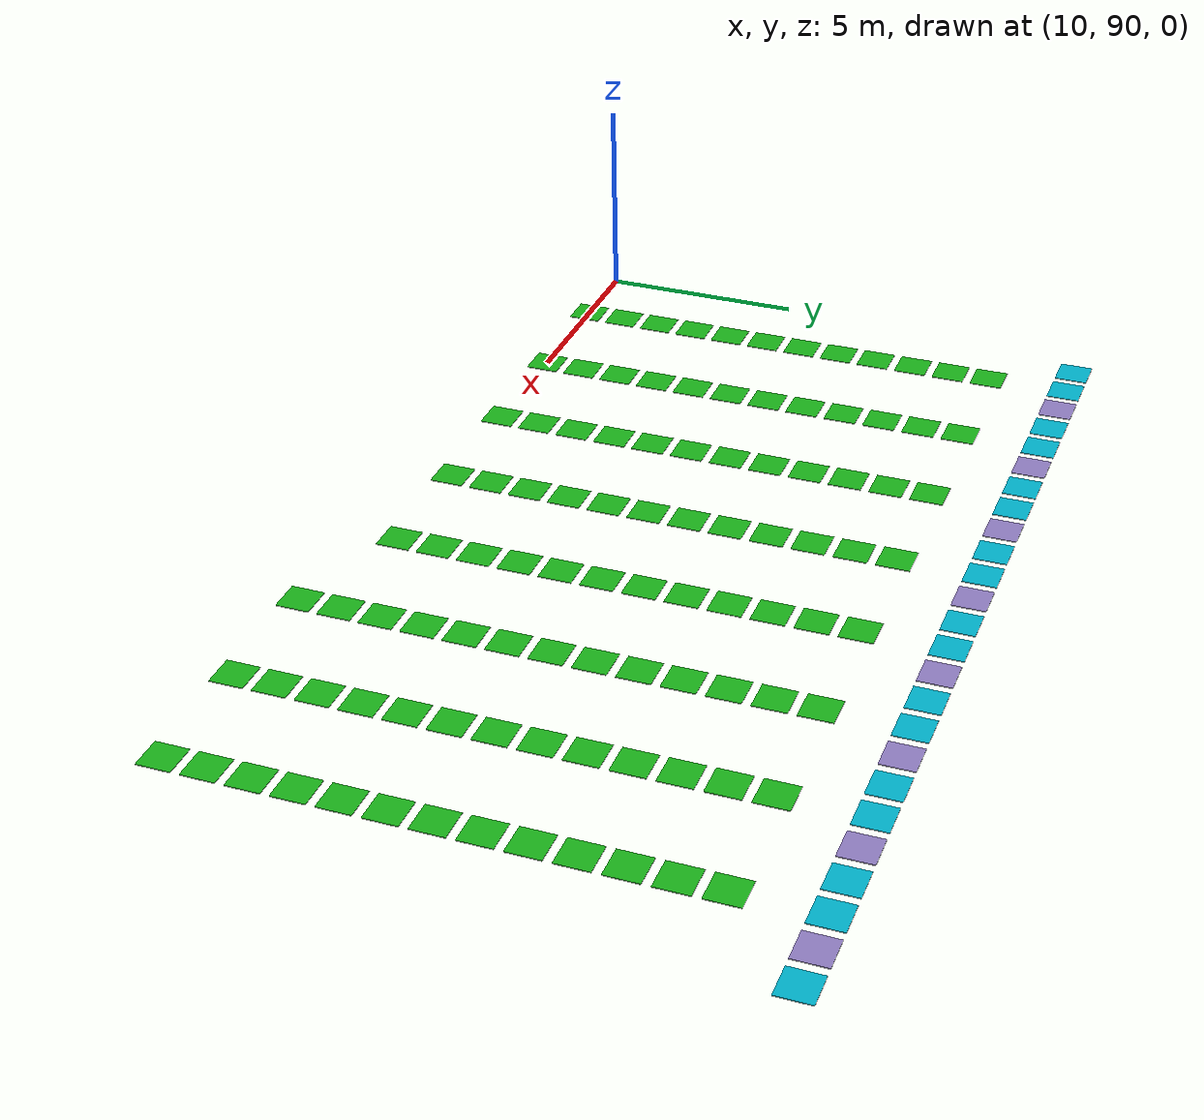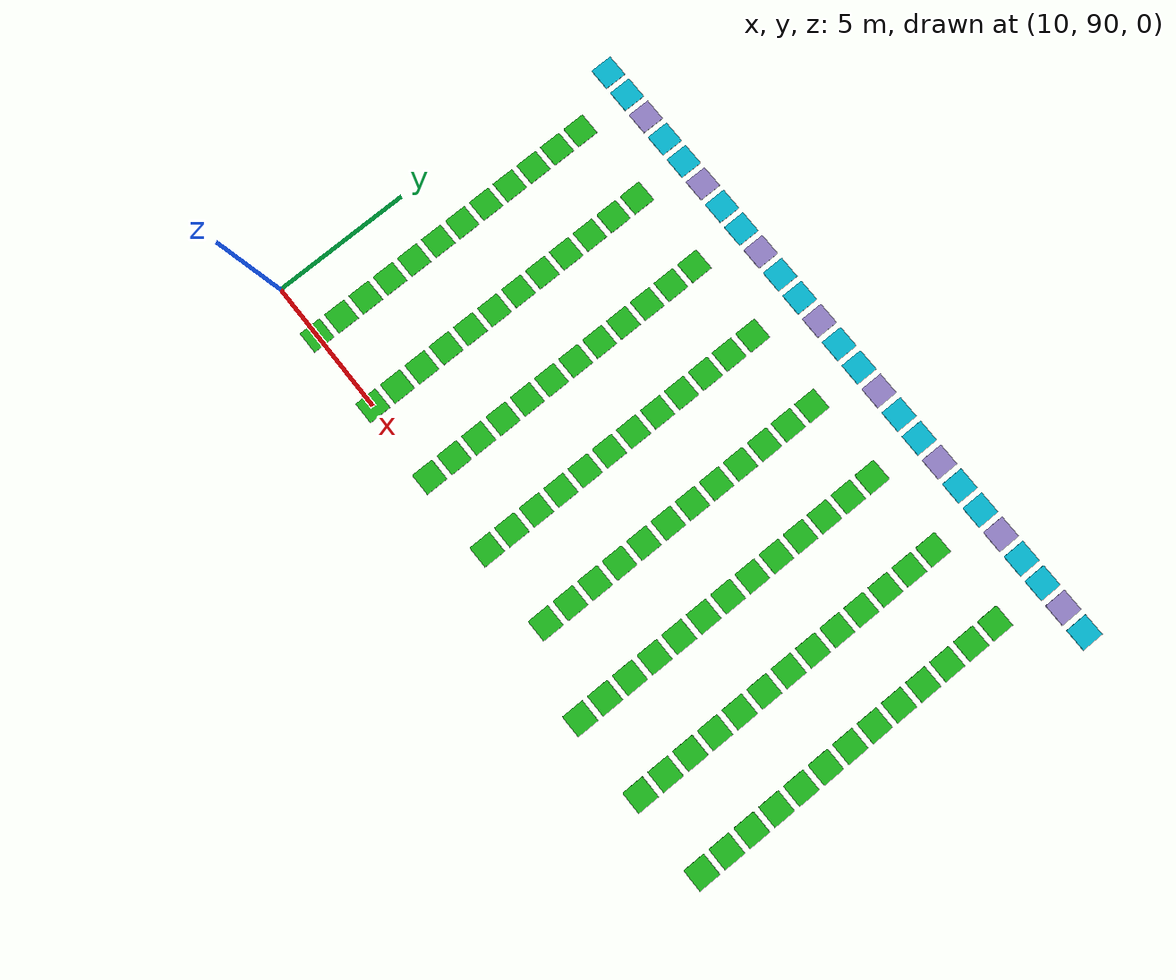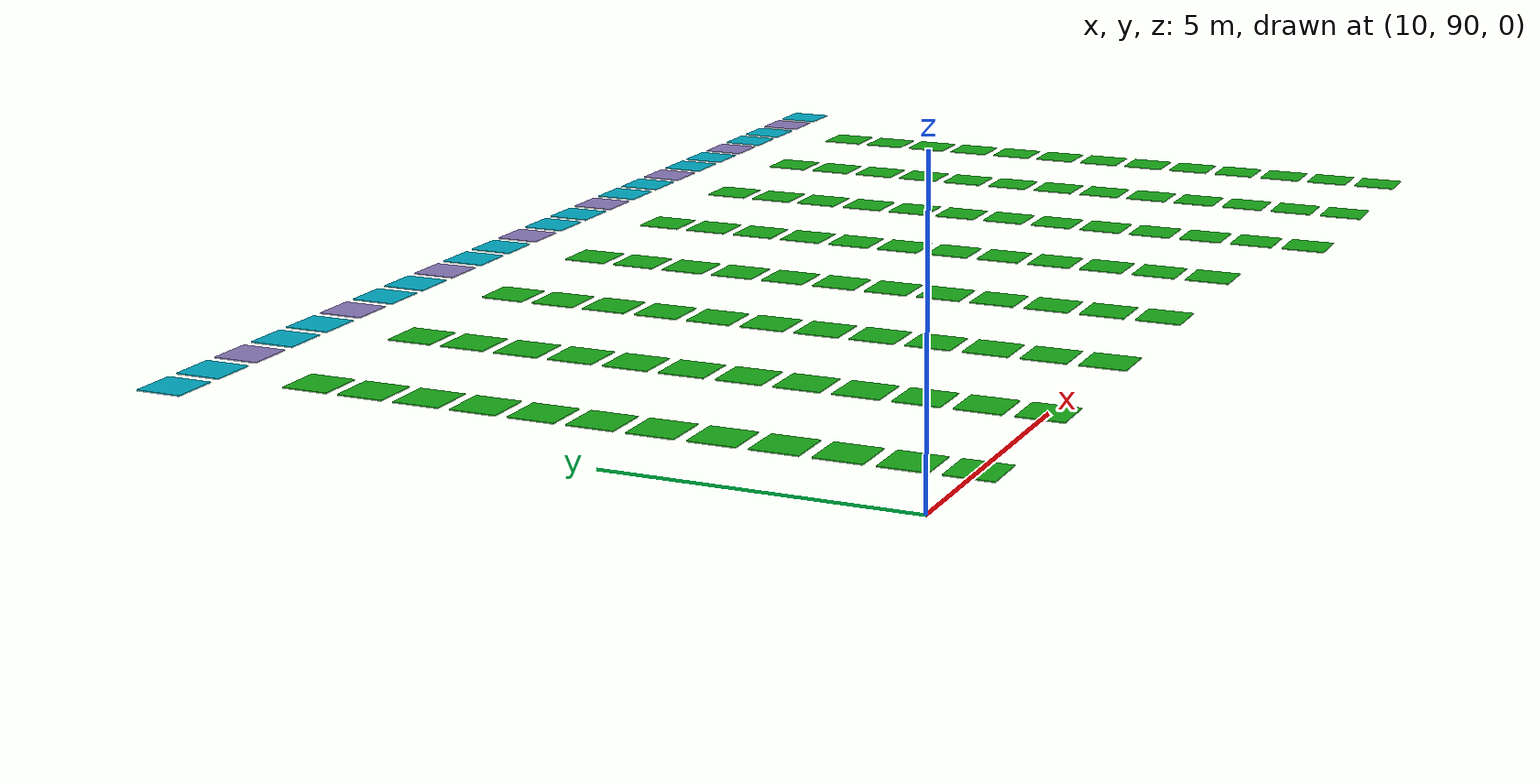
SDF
<sdf version="1.10">
 <world name="my_map">
  <model name="charging_007">
   <static>true</static>
   <pose>11.0
        103.0
        0.02
        0 0 0</pose>
   <link name="link">
    <visual name="visual">
     <geometry><box><size>0.8
                0.8
                0.02</size></box></geometry>
     <material><ambient>0.00 0.70 0.80 1</ambient><diffuse>0.00 0.70 0.80 1</diffuse></material>
    </visual>
   </link>
  </model>
  <model name="charging_008">
   <static>true</static>
   <pose>12.0
        103.0
        0.02
        0 0 0</pose>
   <link name="link">
    <visual name="visual">
     <geometry><box><size>0.8
                0.8
                0.02</size></box></geometry>
     <material><ambient>0.00 0.70 0.80 1</ambient><diffuse>0.00 0.70 0.80 1</diffuse></material>
    </visual>
   </link>
  </model>
  <model name="charge_queue_004">
   <static>true</static>
   <pose>13.0
        103.0
        0.02
        0 0 0</pose>
   <link name="link">
    <visual name="visual">
     <geometry><box><size>0.8
                0.8
                0.02</size></box></geometry>
     <material><ambient>0.56 0.49 0.76 1</ambient><diffuse>0.56 0.49 0.76 1</diffuse></material>
    </visual>
   </link>
  </model>
  <model name="charging_009">
   <static>true</static>
   <pose>14.0
        103.0
        0.02
        0 0 0</pose>
   <link name="link">
    <visual name="visual">
     <geometry><box><size>0.8
                0.8
                0.02</size></box></geometry>
     <material><ambient>0.00 0.70 0.80 1</ambient><diffuse>0.00 0.70 0.80 1</diffuse></material>
    </visual>
   </link>
  </model>
  <model name="charging_010">
   <static>true</static>
   <pose>15.0
        103.0
        0.02
        0 0 0</pose>
   <link name="link">
    <visual name="visual">
     <geometry><box><size>0.8
                0.8
                0.02</size></box></geometry>
     <material><ambient>0.00 0.70 0.80 1</ambient><diffuse>0.00 0.70 0.80 1</diffuse></material>
    </visual>
   </link>
  </model>
  <model name="charge_queue_005">
   <static>true</static>
   <pose>16.0
        103.0
        0.02
        0 0 0</pose>
   <link name="link">
    <visual name="visual">
     <geometry><box><size>0.8
                0.8
                0.02</size></box></geometry>
     <material><ambient>0.56 0.49 0.76 1</ambient><diffuse>0.56 0.49 0.76 1</diffuse></material>
    </visual>
   </link>
  </model>
  <model name="charging_011">
   <static>true</static>
   <pose>17.0
        103.0
        0.02
        0 0 0</pose>
   <link name="link">
    <visual name="visual">
     <geometry><box><size>0.8
                0.8
                0.02</size></box></geometry>
     <material><ambient>0.00 0.70 0.80 1</ambient><diffuse>0.00 0.70 0.80 1</diffuse></material>
    </visual>
   </link>
  </model>
  <model name="charging_012">
   <static>true</static>
   <pose>18.0
        103.0
        0.02
        0 0 0</pose>
   <link name="link">
    <visual name="visual">
     <geometry><box><size>0.8
                0.8
                0.02</size></box></geometry>
     <material><ambient>0.00 0.70 0.80 1</ambient><diffuse>0.00 0.70 0.80 1</diffuse></material>
    </visual>
   </link>
  </model>
  <model name="charge_queue_006">
   <static>true</static>
   <pose>19.0
        103.0
        0.02
        0 0 0</pose>
   <link name="link">
    <visual name="visual">
     <geometry><box><size>0.8
                0.8
                0.02</size></box></geometry>
     <material><ambient>0.56 0.49 0.76 1</ambient><diffuse>0.56 0.49 0.76 1</diffuse></material>
    </visual>
   </link>
  </model>
  <model name="charging_013">
   <static>true</static>
   <pose>20.0
        103.0
        0.02
        0 0 0</pose>
   <link name="link">
    <visual name="visual">
     <geometry><box><size>0.8
                0.8
                0.02</size></box></geometry>
     <material><ambient>0.00 0.70 0.80 1</ambient><diffuse>0.00 0.70 0.80 1</diffuse></material>
    </visual>
   </link>
  </model>
  <model name="charging_014">
   <static>true</static>
   <pose>21.0
        103.0
        0.02
        0 0 0</pose>
   <link name="link">
    <visual name="visual">
     <geometry><box><size>0.8
                0.8
                0.02</size></box></geometry>
     <material><ambient>0.00 0.70 0.80 1</ambient><diffuse>0.00 0.70 0.80 1</diffuse></material>
    </visual>
   </link>
  </model>
  <model name="charge_queue_007">
   <static>true</static>
   <pose>22.0
        103.0
        0.02
        0 0 0</pose>
   <link name="link">
    <visual name="visual">
     <geometry><box><size>0.8
                0.8
                0.02</size></box></geometry>
     <material><ambient>0.56 0.49 0.76 1</ambient><diffuse>0.56 0.49 0.76 1</diffuse></material>
    </visual>
   </link>
  </model>
  <model name="charging_015">
   <static>true</static>
   <pose>23.0
        103.0
        0.02
        0 0 0</pose>
   <link name="link">
    <visual name="visual">
     <geometry><box><size>0.8
                0.8
                0.02</size></box></geometry>
     <material><ambient>0.00 0.70 0.80 1</ambient><diffuse>0.00 0.70 0.80 1</diffuse></material>
    </visual>
   </link>
  </model>
  <model name="charging_016">
   <static>true</static>
   <pose>24.0
        103.0
        0.02
        0 0 0</pose>
   <link name="link">
    <visual name="visual">
     <geometry><box><size>0.8
                0.8
                0.02</size></box></geometry>
     <material><ambient>0.00 0.70 0.80 1</ambient><diffuse>0.00 0.70 0.80 1</diffuse></material>
    </visual>
   </link>
  </model>
  <model name="charge_queue_008">
   <static>true</static>
   <pose>25.0
        103.0
        0.02
        0 0 0</pose>
   <link name="link">
    <visual name="visual">
     <geometry><box><size>0.8
                0.8
                0.02</size></box></geometry>
     <material><ambient>0.56 0.49 0.76 1</ambient><diffuse>0.56 0.49 0.76 1</diffuse></material>
    </visual>
   </link>
  </model>
  <model name="charging_017">
   <static>true</static>
   <pose>26.0
        103.0
        0.02
        0 0 0</pose>
   <link name="link">
    <visual name="visual">
     <geometry><box><size>0.8
                0.8
                0.02</size></box></geometry>
     <material><ambient>0.00 0.70 0.80 1</ambient><diffuse>0.00 0.70 0.80 1</diffuse></material>
    </visual>
   </link>
  </model>
  <model name="charging_018">
   <static>true</static>
   <pose>27.0
        103.0
        0.02
        0 0 0</pose>
   <link name="link">
    <visual name="visual">
     <geometry><box><size>0.8
                0.8
                0.02</size></box></geometry>
     <material><ambient>0.00 0.70 0.80 1</ambient><diffuse>0.00 0.70 0.80 1</diffuse></material>
    </visual>
   </link>
  </model>
  <model name="charge_queue_009">
   <static>true</static>
   <pose>28.0
        103.0
        0.02
        0 0 0</pose>
   <link name="link">
    <visual name="visual">
     <geometry><box><size>0.8
                0.8
                0.02</size></box></geometry>
     <material><ambient>0.56 0.49 0.76 1</ambient><diffuse>0.56 0.49 0.76 1</diffuse></material>
    </visual>
   </link>
  </model>
  <model name="charging_019">
   <static>true</static>
   <pose>29.0
        103.0
        0.02
        0 0 0</pose>
   <link name="link">
    <visual name="visual">
     <geometry><box><size>0.8
                0.8
                0.02</size></box></geometry>
     <material><ambient>0.00 0.70 0.80 1</ambient><diffuse>0.00 0.70 0.80 1</diffuse></material>
    </visual>
   </link>
  </model>
  <model name="charging_020">
   <static>true</static>
   <pose>30.0
        103.0
        0.02
        0 0 0</pose>
   <link name="link">
    <visual name="visual">
     <geometry><box><size>0.8
                0.8
                0.02</size></box></geometry>
     <material><ambient>0.00 0.70 0.80 1</ambient><diffuse>0.00 0.70 0.80 1</diffuse></material>
    </visual>
   </link>
  </model>
  <model name="charge_queue_010">
   <static>true</static>
   <pose>31.0
        103.0
        0.02
        0 0 0</pose>
   <link name="link">
    <visual name="visual">
     <geometry><box><size>0.8
                0.8
                0.02</size></box></geometry>
     <material><ambient>0.56 0.49 0.76 1</ambient><diffuse>0.56 0.49 0.76 1</diffuse></material>
    </visual>
   </link>
  </model>
  <model name="charging_021">
   <static>true</static>
   <pose>32.0
        103.0
        0.02
        0 0 0</pose>
   <link name="link">
    <visual name="visual">
     <geometry><box><size>0.8
                0.8
                0.02</size></box></geometry>
     <material><ambient>0.00 0.70 0.80 1</ambient><diffuse>0.00 0.70 0.80 1</diffuse></material>
    </visual>
   </link>
  </model>
  <model name="charging_022">
   <static>true</static>
   <pose>33.0
        103.0
        0.02
        0 0 0</pose>
   <link name="link">
    <visual name="visual">
     <geometry><box><size>0.8
                0.8
                0.02</size></box></geometry>
     <material><ambient>0.00 0.70 0.80 1</ambient><diffuse>0.00 0.70 0.80 1</diffuse></material>
    </visual>
   </link>
  </model>
  <model name="charge_queue_011">
   <static>true</static>
   <pose>34.0
        103.0
        0.02
        0 0 0</pose>
   <link name="link">
    <visual name="visual">
     <geometry><box><size>0.8
                0.8
                0.02</size></box></geometry>
     <material><ambient>0.56 0.49 0.76 1</ambient><diffuse>0.56 0.49 0.76 1</diffuse></material>
    </visual>
   </link>
  </model>
  <model name="charging_023">
   <static>true</static>
   <pose>35.0
        103.0
        0.02
        0 0 0</pose>
   <link name="link">
    <visual name="visual">
     <geometry><box><size>0.8
                0.8
                0.02</size></box></geometry>
     <material><ambient>0.00 0.70 0.80 1</ambient><diffuse>0.00 0.70 0.80 1</diffuse></material>
    </visual>
   </link>
  </model>
  <model name="shelf_004">
   <static>true</static>
   <pose>12.0
        101.0
        0.02
        0 0 0</pose>
   <link name="link">
    <visual name="visual">
     <geometry><box><size>0.8
                0.8
                0.02</size></box></geometry>
     <material><ambient>0.10 0.70 0.10 1</ambient><diffuse>0.10 0.70 0.10 1</diffuse></material>
    </visual>
   </link>
  </model>
  <model name="shelf_005">
   <static>true</static>
   <pose>15.0
        101.0
        0.02
        0 0 0</pose>
   <link name="link">
    <visual name="visual">
     <geometry><box><size>0.8
                0.8
                0.02</size></box></geometry>
     <material><ambient>0.10 0.70 0.10 1</ambient><diffuse>0.10 0.70 0.10 1</diffuse></material>
    </visual>
   </link>
  </model>
  <model name="shelf_006">
   <static>true</static>
   <pose>18.0
        101.0
        0.02
        0 0 0</pose>
   <link name="link">
    <visual name="visual">
     <geometry><box><size>0.8
                0.8
                0.02</size></box></geometry>
     <material><ambient>0.10 0.70 0.10 1</ambient><diffuse>0.10 0.70 0.10 1</diffuse></material>
    </visual>
   </link>
  </model>
  <model name="shelf_007">
   <static>true</static>
   <pose>21.0
        101.0
        0.02
        0 0 0</pose>
   <link name="link">
    <visual name="visual">
     <geometry><box><size>0.8
                0.8
                0.02</size></box></geometry>
     <material><ambient>0.10 0.70 0.10 1</ambient><diffuse>0.10 0.70 0.10 1</diffuse></material>
    </visual>
   </link>
  </model>
  <model name="shelf_008">
   <static>true</static>
   <pose>24.0
        101.0
        0.02
        0 0 0</pose>
   <link name="link">
    <visual name="visual">
     <geometry><box><size>0.8
                0.8
                0.02</size></box></geometry>
     <material><ambient>0.10 0.70 0.10 1</ambient><diffuse>0.10 0.70 0.10 1</diffuse></material>
    </visual>
   </link>
  </model>
  <model name="shelf_009">
   <static>true</static>
   <pose>27.0
        101.0
        0.02
        0 0 0</pose>
   <link name="link">
    <visual name="visual">
     <geometry><box><size>0.8
                0.8
                0.02</size></box></geometry>
     <material><ambient>0.10 0.70 0.10 1</ambient><diffuse>0.10 0.70 0.10 1</diffuse></material>
    </visual>
   </link>
  </model>
  <model name="shelf_010">
   <static>true</static>
   <pose>30.0
        101.0
        0.02
        0 0 0</pose>
   <link name="link">
    <visual name="visual">
     <geometry><box><size>0.8
                0.8
                0.02</size></box></geometry>
     <material><ambient>0.10 0.70 0.10 1</ambient><diffuse>0.10 0.70 0.10 1</diffuse></material>
    </visual>
   </link>
  </model>
  <model name="shelf_011">
   <static>true</static>
   <pose>33.0
        101.0
        0.02
        0 0 0</pose>
   <link name="link">
    <visual name="visual">
     <geometry><box><size>0.8
                0.8
                0.02</size></box></geometry>
     <material><ambient>0.10 0.70 0.10 1</ambient><diffuse>0.10 0.70 0.10 1</diffuse></material>
    </visual>
   </link>
  </model>
  <model name="shelf_029">
   <static>true</static>
   <pose>12.0
        100.0
        0.02
        0 0 0</pose>
   <link name="link">
    <visual name="visual">
     <geometry><box><size>0.8
                0.8
                0.02</size></box></geometry>
     <material><ambient>0.10 0.70 0.10 1</ambient><diffuse>0.10 0.70 0.10 1</diffuse></material>
    </visual>
   </link>
  </model>
  <model name="shelf_030">
   <static>true</static>
   <pose>15.0
        100.0
        0.02
        0 0 0</pose>
   <link name="link">
    <visual name="visual">
     <geometry><box><size>0.8
                0.8
                0.02</size></box></geometry>
     <material><ambient>0.10 0.70 0.10 1</ambient><diffuse>0.10 0.70 0.10 1</diffuse></material>
    </visual>
   </link>
  </model>
  <model name="shelf_031">
   <static>true</static>
   <pose>18.0
        100.0
        0.02
        0 0 0</pose>
   <link name="link">
    <visual name="visual">
     <geometry><box><size>0.8
                0.8
                0.02</size></box></geometry>
     <material><ambient>0.10 0.70 0.10 1</ambient><diffuse>0.10 0.70 0.10 1</diffuse></material>
    </visual>
   </link>
  </model>
  <model name="shelf_032">
   <static>true</static>
   <pose>21.0
        100.0
        0.02
        0 0 0</pose>
   <link name="link">
    <visual name="visual">
     <geometry><box><size>0.8
                0.8
                0.02</size></box></geometry>
     <material><ambient>0.10 0.70 0.10 1</ambient><diffuse>0.10 0.70 0.10 1</diffuse></material>
    </visual>
   </link>
  </model>
  <model name="shelf_033">
   <static>true</static>
   <pose>24.0
        100.0
        0.02
        0 0 0</pose>
   <link name="link">
    <visual name="visual">
     <geometry><box><size>0.8
                0.8
                0.02</size></box></geometry>
     <material><ambient>0.10 0.70 0.10 1</ambient><diffuse>0.10 0.70 0.10 1</diffuse></material>
    </visual>
   </link>
  </model>
  <model name="shelf_034">
   <static>true</static>
   <pose>27.0
        100.0
        0.02
        0 0 0</pose>
   <link name="link">
    <visual name="visual">
     <geometry><box><size>0.8
                0.8
                0.02</size></box></geometry>
     <material><ambient>0.10 0.70 0.10 1</ambient><diffuse>0.10 0.70 0.10 1</diffuse></material>
    </visual>
   </link>
  </model>
  <model name="shelf_035">
   <static>true</static>
   <pose>30.0
        100.0
        0.02
        0 0 0</pose>
   <link name="link">
    <visual name="visual">
     <geometry><box><size>0.8
                0.8
                0.02</size></box></geometry>
     <material><ambient>0.10 0.70 0.10 1</ambient><diffuse>0.10 0.70 0.10 1</diffuse></material>
    </visual>
   </link>
  </model>
  <model name="shelf_036">
   <static>true</static>
   <pose>33.0
        100.0
        0.02
        0 0 0</pose>
   <link name="link">
    <visual name="visual">
     <geometry><box><size>0.8
                0.8
                0.02</size></box></geometry>
     <material><ambient>0.10 0.70 0.10 1</ambient><diffuse>0.10 0.70 0.10 1</diffuse></material>
    </visual>
   </link>
  </model>
  <model name="shelf_054">
   <static>true</static>
   <pose>12.0
        99.0
        0.02
        0 0 0</pose>
   <link name="link">
    <visual name="visual">
     <geometry><box><size>0.8
                0.8
                0.02</size></box></geometry>
     <material><ambient>0.10 0.70 0.10 1</ambient><diffuse>0.10 0.70 0.10 1</diffuse></material>
    </visual>
   </link>
  </model>
  <model name="shelf_055">
   <static>true</static>
   <pose>15.0
        99.0
        0.02
        0 0 0</pose>
   <link name="link">
    <visual name="visual">
     <geometry><box><size>0.8
                0.8
                0.02</size></box></geometry>
     <material><ambient>0.10 0.70 0.10 1</ambient><diffuse>0.10 0.70 0.10 1</diffuse></material>
    </visual>
   </link>
  </model>
  <model name="shelf_056">
   <static>true</static>
   <pose>18.0
        99.0
        0.02
        0 0 0</pose>
   <link name="link">
    <visual name="visual">
     <geometry><box><size>0.8
                0.8
                0.02</size></box></geometry>
     <material><ambient>0.10 0.70 0.10 1</ambient><diffuse>0.10 0.70 0.10 1</diffuse></material>
    </visual>
   </link>
  </model>
  <model name="shelf_057">
   <static>true</static>
   <pose>21.0
        99.0
        0.02
        0 0 0</pose>
   <link name="link">
    <visual name="visual">
     <geometry><box><size>0.8
                0.8
                0.02</size></box></geometry>
     <material><ambient>0.10 0.70 0.10 1</ambient><diffuse>0.10 0.70 0.10 1</diffuse></material>
    </visual>
   </link>
  </model>
  <model name="shelf_058">
   <static>true</static>
   <pose>24.0
        99.0
        0.02
        0 0 0</pose>
   <link name="link">
    <visual name="visual">
     <geometry><box><size>0.8
                0.8
                0.02</size></box></geometry>
     <material><ambient>0.10 0.70 0.10 1</ambient><diffuse>0.10 0.70 0.10 1</diffuse></material>
    </visual>
   </link>
  </model>
  <model name="shelf_059">
   <static>true</static>
   <pose>27.0
        99.0
        0.02
        0 0 0</pose>
   <link name="link">
    <visual name="visual">
     <geometry><box><size>0.8
                0.8
                0.02</size></box></geometry>
     <material><ambient>0.10 0.70 0.10 1</ambient><diffuse>0.10 0.70 0.10 1</diffuse></material>
    </visual>
   </link>
  </model>
  <model name="shelf_060">
   <static>true</static>
   <pose>30.0
        99.0
        0.02
        0 0 0</pose>
   <link name="link">
    <visual name="visual">
     <geometry><box><size>0.8
                0.8
                0.02</size></box></geometry>
     <material><ambient>0.10 0.70 0.10 1</ambient><diffuse>0.10 0.70 0.10 1</diffuse></material>
    </visual>
   </link>
  </model>
  <model name="shelf_061">
   <static>true</static>
   <pose>33.0
        99.0
        0.02
        0 0 0</pose>
   <link name="link">
    <visual name="visual">
     <geometry><box><size>0.8
                0.8
                0.02</size></box></geometry>
     <material><ambient>0.10 0.70 0.10 1</ambient><diffuse>0.10 0.70 0.10 1</diffuse></material>
    </visual>
   </link>
  </model>
  <model name="shelf_079">
   <static>true</static>
   <pose>12.0
        98.0
        0.02
        0 0 0</pose>
   <link name="link">
    <visual name="visual">
     <geometry><box><size>0.8
                0.8
                0.02</size></box></geometry>
     <material><ambient>0.10 0.70 0.10 1</ambient><diffuse>0.10 0.70 0.10 1</diffuse></material>
    </visual>
   </link>
  </model>
  <model name="shelf_080">
   <static>true</static>
   <pose>15.0
        98.0
        0.02
        0 0 0</pose>
   <link name="link">
    <visual name="visual">
     <geometry><box><size>0.8
                0.8
                0.02</size></box></geometry>
     <material><ambient>0.10 0.70 0.10 1</ambient><diffuse>0.10 0.70 0.10 1</diffuse></material>
    </visual>
   </link>
  </model>
  <model name="shelf_081">
   <static>true</static>
   <pose>18.0
        98.0
        0.02
        0 0 0</pose>
   <link name="link">
    <visual name="visual">
     <geometry><box><size>0.8
                0.8
                0.02</size></box></geometry>
     <material><ambient>0.10 0.70 0.10 1</ambient><diffuse>0.10 0.70 0.10 1</diffuse></material>
    </visual>
   </link>
  </model>
  <model name="shelf_082">
   <static>true</static>
   <pose>21.0
        98.0
        0.02
        0 0 0</pose>
   <link name="link">
    <visual name="visual">
     <geometry><box><size>0.8
                0.8
                0.02</size></box></geometry>
     <material><ambient>0.10 0.70 0.10 1</ambient><diffuse>0.10 0.70 0.10 1</diffuse></material>
    </visual>
   </link>
  </model>
  <model name="shelf_083">
   <static>true</static>
   <pose>24.0
        98.0
        0.02
        0 0 0</pose>
   <link name="link">
    <visual name="visual">
     <geometry><box><size>0.8
                0.8
                0.02</size></box></geometry>
     <material><ambient>0.10 0.70 0.10 1</ambient><diffuse>0.10 0.70 0.10 1</diffuse></material>
    </visual>
   </link>
  </model>
  <model name="shelf_084">
   <static>true</static>
   <pose>27.0
        98.0
        0.02
        0 0 0</pose>
   <link name="link">
    <visual name="visual">
     <geometry><box><size>0.8
                0.8
                0.02</size></box></geometry>
     <material><ambient>0.10 0.70 0.10 1</ambient><diffuse>0.10 0.70 0.10 1</diffuse></material>
    </visual>
   </link>
  </model>
  <model name="shelf_085">
   <static>true</static>
   <pose>30.0
        98.0
        0.02
        0 0 0</pose>
   <link name="link">
    <visual name="visual">
     <geometry><box><size>0.8
                0.8
                0.02</size></box></geometry>
     <material><ambient>0.10 0.70 0.10 1</ambient><diffuse>0.10 0.70 0.10 1</diffuse></material>
    </visual>
   </link>
  </model>
  <model name="shelf_086">
   <static>true</static>
   <pose>33.0
        98.0
        0.02
        0 0 0</pose>
   <link name="link">
    <visual name="visual">
     <geometry><box><size>0.8
                0.8
                0.02</size></box></geometry>
     <material><ambient>0.10 0.70 0.10 1</ambient><diffuse>0.10 0.70 0.10 1</diffuse></material>
    </visual>
   </link>
  </model>
  <model name="shelf_104">
   <static>true</static>
   <pose>12.0
        97.0
        0.02
        0 0 0</pose>
   <link name="link">
    <visual name="visual">
     <geometry><box><size>0.8
                0.8
                0.02</size></box></geometry>
     <material><ambient>0.10 0.70 0.10 1</ambient><diffuse>0.10 0.70 0.10 1</diffuse></material>
    </visual>
   </link>
  </model>
  <model name="shelf_105">
   <static>true</static>
   <pose>15.0
        97.0
        0.02
        0 0 0</pose>
   <link name="link">
    <visual name="visual">
     <geometry><box><size>0.8
                0.8
                0.02</size></box></geometry>
     <material><ambient>0.10 0.70 0.10 1</ambient><diffuse>0.10 0.70 0.10 1</diffuse></material>
    </visual>
   </link>
  </model>
  <model name="shelf_106">
   <static>true</static>
   <pose>18.0
        97.0
        0.02
        0 0 0</pose>
   <link name="link">
    <visual name="visual">
     <geometry><box><size>0.8
                0.8
                0.02</size></box></geometry>
     <material><ambient>0.10 0.70 0.10 1</ambient><diffuse>0.10 0.70 0.10 1</diffuse></material>
    </visual>
   </link>
  </model>
  <model name="shelf_107">
   <static>true</static>
   <pose>21.0
        97.0
        0.02
        0 0 0</pose>
   <link name="link">
    <visual name="visual">
     <geometry><box><size>0.8
                0.8
                0.02</size></box></geometry>
     <material><ambient>0.10 0.70 0.10 1</ambient><diffuse>0.10 0.70 0.10 1</diffuse></material>
    </visual>
   </link>
  </model>
  <model name="shelf_108">
   <static>true</static>
   <pose>24.0
        97.0
        0.02
        0 0 0</pose>
   <link name="link">
    <visual name="visual">
     <geometry><box><size>0.8
                0.8
                0.02</size></box></geometry>
     <material><ambient>0.10 0.70 0.10 1</ambient><diffuse>0.10 0.70 0.10 1</diffuse></material>
    </visual>
   </link>
  </model>
  <model name="shelf_109">
   <static>true</static>
   <pose>27.0
        97.0
        0.02
        0 0 0</pose>
   <link name="link">
    <visual name="visual">
     <geometry><box><size>0.8
                0.8
                0.02</size></box></geometry>
     <material><ambient>0.10 0.70 0.10 1</ambient><diffuse>0.10 0.70 0.10 1</diffuse></material>
    </visual>
   </link>
  </model>
  <model name="shelf_110">
   <static>true</static>
   <pose>30.0
        97.0
        0.02
        0 0 0</pose>
   <link name="link">
    <visual name="visual">
     <geometry><box><size>0.8
                0.8
                0.02</size></box></geometry>
     <material><ambient>0.10 0.70 0.10 1</ambient><diffuse>0.10 0.70 0.10 1</diffuse></material>
    </visual>
   </link>
  </model>
  <model name="shelf_111">
   <static>true</static>
   <pose>33.0
        97.0
        0.02
        0 0 0</pose>
   <link name="link">
    <visual name="visual">
     <geometry><box><size>0.8
                0.8
                0.02</size></box></geometry>
     <material><ambient>0.10 0.70 0.10 1</ambient><diffuse>0.10 0.70 0.10 1</diffuse></material>
    </visual>
   </link>
  </model>
  <model name="shelf_129">
   <static>true</static>
   <pose>12.0
        96.0
        0.02
        0 0 0</pose>
   <link name="link">
    <visual name="visual">
     <geometry><box><size>0.8
                0.8
                0.02</size></box></geometry>
     <material><ambient>0.10 0.70 0.10 1</ambient><diffuse>0.10 0.70 0.10 1</diffuse></material>
    </visual>
   </link>
  </model>
  <model name="shelf_130">
   <static>true</static>
   <pose>15.0
        96.0
        0.02
        0 0 0</pose>
   <link name="link">
    <visual name="visual">
     <geometry><box><size>0.8
                0.8
                0.02</size></box></geometry>
     <material><ambient>0.10 0.70 0.10 1</ambient><diffuse>0.10 0.70 0.10 1</diffuse></material>
    </visual>
   </link>
  </model>
  <model name="shelf_131">
   <static>true</static>
   <pose>18.0
        96.0
        0.02
        0 0 0</pose>
   <link name="link">
    <visual name="visual">
     <geometry><box><size>0.8
                0.8
                0.02</size></box></geometry>
     <material><ambient>0.10 0.70 0.10 1</ambient><diffuse>0.10 0.70 0.10 1</diffuse></material>
    </visual>
   </link>
  </model>
  <model name="shelf_132">
   <static>true</static>
   <pose>21.0
        96.0
        0.02
        0 0 0</pose>
   <link name="link">
    <visual name="visual">
     <geometry><box><size>0.8
                0.8
                0.02</size></box></geometry>
     <material><ambient>0.10 0.70 0.10 1</ambient><diffuse>0.10 0.70 0.10 1</diffuse></material>
    </visual>
   </link>
  </model>
  <model name="shelf_133">
   <static>true</static>
   <pose>24.0
        96.0
        0.02
        0 0 0</pose>
   <link name="link">
    <visual name="visual">
     <geometry><box><size>0.8
                0.8
                0.02</size></box></geometry>
     <material><ambient>0.10 0.70 0.10 1</ambient><diffuse>0.10 0.70 0.10 1</diffuse></material>
    </visual>
   </link>
  </model>
  <model name="shelf_134">
   <static>true</static>
   <pose>27.0
        96.0
        0.02
        0 0 0</pose>
   <link name="link">
    <visual name="visual">
     <geometry><box><size>0.8
                0.8
                0.02</size></box></geometry>
     <material><ambient>0.10 0.70 0.10 1</ambient><diffuse>0.10 0.70 0.10 1</diffuse></material>
    </visual>
   </link>
  </model>
  <model name="shelf_135">
   <static>true</static>
   <pose>30.0
        96.0
        0.02
        0 0 0</pose>
   <link name="link">
    <visual name="visual">
     <geometry><box><size>0.8
                0.8
                0.02</size></box></geometry>
     <material><ambient>0.10 0.70 0.10 1</ambient><diffuse>0.10 0.70 0.10 1</diffuse></material>
    </visual>
   </link>
  </model>
  <model name="shelf_136">
   <static>true</static>
   <pose>33.0
        96.0
        0.02
        0 0 0</pose>
   <link name="link">
    <visual name="visual">
     <geometry><box><size>0.8
                0.8
                0.02</size></box></geometry>
     <material><ambient>0.10 0.70 0.10 1</ambient><diffuse>0.10 0.70 0.10 1</diffuse></material>
    </visual>
   </link>
  </model>
  <model name="shelf_154">
   <static>true</static>
   <pose>12.0
        95.0
        0.02
        0 0 0</pose>
   <link name="link">
    <visual name="visual">
     <geometry><box><size>0.8
                0.8
                0.02</size></box></geometry>
     <material><ambient>0.10 0.70 0.10 1</ambient><diffuse>0.10 0.70 0.10 1</diffuse></material>
    </visual>
   </link>
  </model>
  <model name="shelf_155">
   <static>true</static>
   <pose>15.0
        95.0
        0.02
        0 0 0</pose>
   <link name="link">
    <visual name="visual">
     <geometry><box><size>0.8
                0.8
                0.02</size></box></geometry>
     <material><ambient>0.10 0.70 0.10 1</ambient><diffuse>0.10 0.70 0.10 1</diffuse></material>
    </visual>
   </link>
  </model>
  <model name="shelf_156">
   <static>true</static>
   <pose>18.0
        95.0
        0.02
        0 0 0</pose>
   <link name="link">
    <visual name="visual">
     <geometry><box><size>0.8
                0.8
                0.02</size></box></geometry>
     <material><ambient>0.10 0.70 0.10 1</ambient><diffuse>0.10 0.70 0.10 1</diffuse></material>
    </visual>
   </link>
  </model>
  <model name="shelf_157">
   <static>true</static>
   <pose>21.0
        95.0
        0.02
        0 0 0</pose>
   <link name="link">
    <visual name="visual">
     <geometry><box><size>0.8
                0.8
                0.02</size></box></geometry>
     <material><ambient>0.10 0.70 0.10 1</ambient><diffuse>0.10 0.70 0.10 1</diffuse></material>
    </visual>
   </link>
  </model>
  <model name="shelf_158">
   <static>true</static>
   <pose>24.0
        95.0
        0.02
        0 0 0</pose>
   <link name="link">
    <visual name="visual">
     <geometry><box><size>0.8
                0.8
                0.02</size></box></geometry>
     <material><ambient>0.10 0.70 0.10 1</ambient><diffuse>0.10 0.70 0.10 1</diffuse></material>
    </visual>
   </link>
  </model>
  <model name="shelf_159">
   <static>true</static>
   <pose>27.0
        95.0
        0.02
        0 0 0</pose>
   <link name="link">
    <visual name="visual">
     <geometry><box><size>0.8
                0.8
                0.02</size></box></geometry>
     <material><ambient>0.10 0.70 0.10 1</ambient><diffuse>0.10 0.70 0.10 1</diffuse></material>
    </visual>
   </link>
  </model>
  <model name="shelf_160">
   <static>true</static>
   <pose>30.0
        95.0
        0.02
        0 0 0</pose>
   <link name="link">
    <visual name="visual">
     <geometry><box><size>0.8
                0.8
                0.02</size></box></geometry>
     <material><ambient>0.10 0.70 0.10 1</ambient><diffuse>0.10 0.70 0.10 1</diffuse></material>
    </visual>
   </link>
  </model>
  <model name="shelf_161">
   <static>true</static>
   <pose>33.0
        95.0
        0.02
        0 0 0</pose>
   <link name="link">
    <visual name="visual">
     <geometry><box><size>0.8
                0.8
                0.02</size></box></geometry>
     <material><ambient>0.10 0.70 0.10 1</ambient><diffuse>0.10 0.70 0.10 1</diffuse></material>
    </visual>
   </link>
  </model>
  <model name="shelf_179">
   <static>true</static>
   <pose>12.0
        94.0
        0.02
        0 0 0</pose>
   <link name="link">
    <visual name="visual">
     <geometry><box><size>0.8
                0.8
                0.02</size></box></geometry>
     <material><ambient>0.10 0.70 0.10 1</ambient><diffuse>0.10 0.70 0.10 1</diffuse></material>
    </visual>
   </link>
  </model>
  <model name="shelf_180">
   <static>true</static>
   <pose>15.0
        94.0
        0.02
        0 0 0</pose>
   <link name="link">
    <visual name="visual">
     <geometry><box><size>0.8
                0.8
                0.02</size></box></geometry>
     <material><ambient>0.10 0.70 0.10 1</ambient><diffuse>0.10 0.70 0.10 1</diffuse></material>
    </visual>
   </link>
  </model>
  <model name="shelf_181">
   <static>true</static>
   <pose>18.0
        94.0
        0.02
        0 0 0</pose>
   <link name="link">
    <visual name="visual">
     <geometry><box><size>0.8
                0.8
                0.02</size></box></geometry>
     <material><ambient>0.10 0.70 0.10 1</ambient><diffuse>0.10 0.70 0.10 1</diffuse></material>
    </visual>
   </link>
  </model>
  <model name="shelf_182">
   <static>true</static>
   <pose>21.0
        94.0
        0.02
        0 0 0</pose>
   <link name="link">
    <visual name="visual">
     <geometry><box><size>0.8
                0.8
                0.02</size></box></geometry>
     <material><ambient>0.10 0.70 0.10 1</ambient><diffuse>0.10 0.70 0.10 1</diffuse></material>
    </visual>
   </link>
  </model>
  <model name="shelf_183">
   <static>true</static>
   <pose>24.0
        94.0
        0.02
        0 0 0</pose>
   <link name="link">
    <visual name="visual">
     <geometry><box><size>0.8
                0.8
                0.02</size></box></geometry>
     <material><ambient>0.10 0.70 0.10 1</ambient><diffuse>0.10 0.70 0.10 1</diffuse></material>
    </visual>
   </link>
  </model>
  <model name="shelf_184">
   <static>true</static>
   <pose>27.0
        94.0
        0.02
        0 0 0</pose>
   <link name="link">
    <visual name="visual">
     <geometry><box><size>0.8
                0.8
                0.02</size></box></geometry>
     <material><ambient>0.10 0.70 0.10 1</ambient><diffuse>0.10 0.70 0.10 1</diffuse></material>
    </visual>
   </link>
  </model>
  <model name="shelf_185">
   <static>true</static>
   <pose>30.0
        94.0
        0.02
        0 0 0</pose>
   <link name="link">
    <visual name="visual">
     <geometry><box><size>0.8
                0.8
                0.02</size></box></geometry>
     <material><ambient>0.10 0.70 0.10 1</ambient><diffuse>0.10 0.70 0.10 1</diffuse></material>
    </visual>
   </link>
  </model>
  <model name="shelf_186">
   <static>true</static>
   <pose>33.0
        94.0
        0.02
        0 0 0</pose>
   <link name="link">
    <visual name="visual">
     <geometry><box><size>0.8
                0.8
                0.02</size></box></geometry>
     <material><ambient>0.10 0.70 0.10 1</ambient><diffuse>0.10 0.70 0.10 1</diffuse></material>
    </visual>
   </link>
  </model>
  <model name="shelf_204">
   <static>true</static>
   <pose>12.0
        93.0
        0.02
        0 0 0</pose>
   <link name="link">
    <visual name="visual">
     <geometry><box><size>0.8
                0.8
                0.02</size></box></geometry>
     <material><ambient>0.10 0.70 0.10 1</ambient><diffuse>0.10 0.70 0.10 1</diffuse></material>
    </visual>
   </link>
  </model>
  <model name="shelf_205">
   <static>true</static>
   <pose>15.0
        93.0
        0.02
        0 0 0</pose>
   <link name="link">
    <visual name="visual">
     <geometry><box><size>0.8
                0.8
                0.02</size></box></geometry>
     <material><ambient>0.10 0.70 0.10 1</ambient><diffuse>0.10 0.70 0.10 1</diffuse></material>
    </visual>
   </link>
  </model>
  <model name="shelf_206">
   <static>true</static>
   <pose>18.0
        93.0
        0.02
        0 0 0</pose>
   <link name="link">
    <visual name="visual">
     <geometry><box><size>0.8
                0.8
                0.02</size></box></geometry>
     <material><ambient>0.10 0.70 0.10 1</ambient><diffuse>0.10 0.70 0.10 1</diffuse></material>
    </visual>
   </link>
  </model>
  <model name="shelf_207">
   <static>true</static>
   <pose>21.0
        93.0
        0.02
        0 0 0</pose>
   <link name="link">
    <visual name="visual">
     <geometry><box><size>0.8
                0.8
                0.02</size></box></geometry>
     <material><ambient>0.10 0.70 0.10 1</ambient><diffuse>0.10 0.70 0.10 1</diffuse></material>
    </visual>
   </link>
  </model>
  <model name="shelf_208">
   <static>true</static>
   <pose>24.0
        93.0
        0.02
        0 0 0</pose>
   <link name="link">
    <visual name="visual">
     <geometry><box><size>0.8
                0.8
                0.02</size></box></geometry>
     <material><ambient>0.10 0.70 0.10 1</ambient><diffuse>0.10 0.70 0.10 1</diffuse></material>
    </visual>
   </link>
  </model>
  <model name="shelf_209">
   <static>true</static>
   <pose>27.0
        93.0
        0.02
        0 0 0</pose>
   <link name="link">
    <visual name="visual">
     <geometry><box><size>0.8
                0.8
                0.02</size></box></geometry>
     <material><ambient>0.10 0.70 0.10 1</ambient><diffuse>0.10 0.70 0.10 1</diffuse></material>
    </visual>
   </link>
  </model>
  <model name="shelf_210">
   <static>true</static>
   <pose>30.0
        93.0
        0.02
        0 0 0</pose>
   <link name="link">
    <visual name="visual">
     <geometry><box><size>0.8
                0.8
                0.02</size></box></geometry>
     <material><ambient>0.10 0.70 0.10 1</ambient><diffuse>0.10 0.70 0.10 1</diffuse></material>
    </visual>
   </link>
  </model>
  <model name="shelf_211">
   <static>true</static>
   <pose>33.0
        93.0
        0.02
        0 0 0</pose>
   <link name="link">
    <visual name="visual">
     <geometry><box><size>0.8
                0.8
                0.02</size></box></geometry>
     <material><ambient>0.10 0.70 0.10 1</ambient><diffuse>0.10 0.70 0.10 1</diffuse></material>
    </visual>
   </link>
  </model>
  <model name="shelf_229">
   <static>true</static>
   <pose>12.0
        92.0
        0.02
        0 0 0</pose>
   <link name="link">
    <visual name="visual">
     <geometry><box><size>0.8
                0.8
                0.02</size></box></geometry>
     <material><ambient>0.10 0.70 0.10 1</ambient><diffuse>0.10 0.70 0.10 1</diffuse></material>
    </visual>
   </link>
  </model>
  <model name="shelf_230">
   <static>true</static>
   <pose>15.0
        92.0
        0.02
        0 0 0</pose>
   <link name="link">
    <visual name="visual">
     <geometry><box><size>0.8
                0.8
                0.02</size></box></geometry>
     <material><ambient>0.10 0.70 0.10 1</ambient><diffuse>0.10 0.70 0.10 1</diffuse></material>
    </visual>
   </link>
  </model>
  <model name="shelf_231">
   <static>true</static>
   <pose>18.0
        92.0
        0.02
        0 0 0</pose>
   <link name="link">
    <visual name="visual">
     <geometry><box><size>0.8
                0.8
                0.02</size></box></geometry>
     <material><ambient>0.10 0.70 0.10 1</ambient><diffuse>0.10 0.70 0.10 1</diffuse></material>
    </visual>
   </link>
  </model>
  <model name="shelf_232">
   <static>true</static>
   <pose>21.0
        92.0
        0.02
        0 0 0</pose>
   <link name="link">
    <visual name="visual">
     <geometry><box><size>0.8
                0.8
                0.02</size></box></geometry>
     <material><ambient>0.10 0.70 0.10 1</ambient><diffuse>0.10 0.70 0.10 1</diffuse></material>
    </visual>
   </link>
  </model>
  <model name="shelf_233">
   <static>true</static>
   <pose>24.0
        92.0
        0.02
        0 0 0</pose>
   <link name="link">
    <visual name="visual">
     <geometry><box><size>0.8
                0.8
                0.02</size></box></geometry>
     <material><ambient>0.10 0.70 0.10 1</ambient><diffuse>0.10 0.70 0.10 1</diffuse></material>
    </visual>
   </link>
  </model>
  <model name="shelf_234">
   <static>true</static>
   <pose>27.0
        92.0
        0.02
        0 0 0</pose>
   <link name="link">
    <visual name="visual">
     <geometry><box><size>0.8
                0.8
                0.02</size></box></geometry>
     <material><ambient>0.10 0.70 0.10 1</ambient><diffuse>0.10 0.70 0.10 1</diffuse></material>
    </visual>
   </link>
  </model>
  <model name="shelf_235">
   <static>true</static>
   <pose>30.0
        92.0
        0.02
        0 0 0</pose>
   <link name="link">
    <visual name="visual">
     <geometry><box><size>0.8
                0.8
                0.02</size></box></geometry>
     <material><ambient>0.10 0.70 0.10 1</ambient><diffuse>0.10 0.70 0.10 1</diffuse></material>
    </visual>
   </link>
  </model>
  <model name="shelf_236">
   <static>true</static>
   <pose>33.0
        92.0
        0.02
        0 0 0</pose>
   <link name="link">
    <visual name="visual">
     <geometry><box><size>0.8
                0.8
                0.02</size></box></geometry>
     <material><ambient>0.10 0.70 0.10 1</ambient><diffuse>0.10 0.70 0.10 1</diffuse></material>
    </visual>
   </link>
  </model>
  <model name="shelf_254">
   <static>true</static>
   <pose>12.0
        91.0
        0.02
        0 0 0</pose>
   <link name="link">
    <visual name="visual">
     <geometry><box><size>0.8
                0.8
                0.02</size></box></geometry>
     <material><ambient>0.10 0.70 0.10 1</ambient><diffuse>0.10 0.70 0.10 1</diffuse></material>
    </visual>
   </link>
  </model>
  <model name="shelf_255">
   <static>true</static>
   <pose>15.0
        91.0
        0.02
        0 0 0</pose>
   <link name="link">
    <visual name="visual">
     <geometry><box><size>0.8
                0.8
                0.02</size></box></geometry>
     <material><ambient>0.10 0.70 0.10 1</ambient><diffuse>0.10 0.70 0.10 1</diffuse></material>
    </visual>
   </link>
  </model>
  <model name="shelf_256">
   <static>true</static>
   <pose>18.0
        91.0
        0.02
        0 0 0</pose>
   <link name="link">
    <visual name="visual">
     <geometry><box><size>0.8
                0.8
                0.02</size></box></geometry>
     <material><ambient>0.10 0.70 0.10 1</ambient><diffuse>0.10 0.70 0.10 1</diffuse></material>
    </visual>
   </link>
  </model>
  <model name="shelf_257">
   <static>true</static>
   <pose>21.0
        91.0
        0.02
        0 0 0</pose>
   <link name="link">
    <visual name="visual">
     <geometry><box><size>0.8
                0.8
                0.02</size></box></geometry>
     <material><ambient>0.10 0.70 0.10 1</ambient><diffuse>0.10 0.70 0.10 1</diffuse></material>
    </visual>
   </link>
  </model>
  <model name="shelf_258">
   <static>true</static>
   <pose>24.0
        91.0
        0.02
        0 0 0</pose>
   <link name="link">
    <visual name="visual">
     <geometry><box><size>0.8
                0.8
                0.02</size></box></geometry>
     <material><ambient>0.10 0.70 0.10 1</ambient><diffuse>0.10 0.70 0.10 1</diffuse></material>
    </visual>
   </link>
  </model>
  <model name="shelf_259">
   <static>true</static>
   <pose>27.0
        91.0
        0.02
        0 0 0</pose>
   <link name="link">
    <visual name="visual">
     <geometry><box><size>0.8
                0.8
                0.02</size></box></geometry>
     <material><ambient>0.10 0.70 0.10 1</ambient><diffuse>0.10 0.70 0.10 1</diffuse></material>
    </visual>
   </link>
  </model>
  <model name="shelf_260">
   <static>true</static>
   <pose>30.0
        91.0
        0.02
        0 0 0</pose>
   <link name="link">
    <visual name="visual">
     <geometry><box><size>0.8
                0.8
                0.02</size></box></geometry>
     <material><ambient>0.10 0.70 0.10 1</ambient><diffuse>0.10 0.70 0.10 1</diffuse></material>
    </visual>
   </link>
  </model>
  <model name="shelf_261">
   <static>true</static>
   <pose>33.0
        91.0
        0.02
        0 0 0</pose>
   <link name="link">
    <visual name="visual">
     <geometry><box><size>0.8
                0.8
                0.02</size></box></geometry>
     <material><ambient>0.10 0.70 0.10 1</ambient><diffuse>0.10 0.70 0.10 1</diffuse></material>
    </visual>
   </link>
  </model>
  <model name="shelf_279">
   <static>true</static>
   <pose>12.0
        90.0
        0.02
        0 0 0</pose>
   <link name="link">
    <visual name="visual">
     <geometry><box><size>0.8
                0.8
                0.02</size></box></geometry>
     <material><ambient>0.10 0.70 0.10 1</ambient><diffuse>0.10 0.70 0.10 1</diffuse></material>
    </visual>
   </link>
  </model>
  <model name="shelf_280">
   <static>true</static>
   <pose>15.0
        90.0
        0.02
        0 0 0</pose>
   <link name="link">
    <visual name="visual">
     <geometry><box><size>0.8
                0.8
                0.02</size></box></geometry>
     <material><ambient>0.10 0.70 0.10 1</ambient><diffuse>0.10 0.70 0.10 1</diffuse></material>
    </visual>
   </link>
  </model>
  <model name="shelf_281">
   <static>true</static>
   <pose>18.0
        90.0
        0.02
        0 0 0</pose>
   <link name="link">
    <visual name="visual">
     <geometry><box><size>0.8
                0.8
                0.02</size></box></geometry>
     <material><ambient>0.10 0.70 0.10 1</ambient><diffuse>0.10 0.70 0.10 1</diffuse></material>
    </visual>
   </link>
  </model>
  <model name="shelf_282">
   <static>true</static>
   <pose>21.0
        90.0
        0.02
        0 0 0</pose>
   <link name="link">
    <visual name="visual">
     <geometry><box><size>0.8
                0.8
                0.02</size></box></geometry>
     <material><ambient>0.10 0.70 0.10 1</ambient><diffuse>0.10 0.70 0.10 1</diffuse></material>
    </visual>
   </link>
  </model>
  <model name="shelf_283">
   <static>true</static>
   <pose>24.0
        90.0
        0.02
        0 0 0</pose>
   <link name="link">
    <visual name="visual">
     <geometry><box><size>0.8
                0.8
                0.02</size></box></geometry>
     <material><ambient>0.10 0.70 0.10 1</ambient><diffuse>0.10 0.70 0.10 1</diffuse></material>
    </visual>
   </link>
  </model>
  <model name="shelf_284">
   <static>true</static>
   <pose>27.0
        90.0
        0.02
        0 0 0</pose>
   <link name="link">
    <visual name="visual">
     <geometry><box><size>0.8
                0.8
                0.02</size></box></geometry>
     <material><ambient>0.10 0.70 0.10 1</ambient><diffuse>0.10 0.70 0.10 1</diffuse></material>
    </visual>
   </link>
  </model>
  <model name="shelf_285">
   <static>true</static>
   <pose>30.0
        90.0
        0.02
        0 0 0</pose>
   <link name="link">
    <visual name="visual">
     <geometry><box><size>0.8
                0.8
                0.02</size></box></geometry>
     <material><ambient>0.10 0.70 0.10 1</ambient><diffuse>0.10 0.70 0.10 1</diffuse></material>
    </visual>
   </link>
  </model>
  <model name="shelf_286">
   <static>true</static>
   <pose>33.0
        90.0
        0.02
        0 0 0</pose>
   <link name="link">
    <visual name="visual">
     <geometry><box><size>0.8
                0.8
                0.02</size></box></geometry>
     <material><ambient>0.10 0.70 0.10 1</ambient><diffuse>0.10 0.70 0.10 1</diffuse></material>
    </visual>
   </link>
  </model>
  <model name="shelf_309">
   <static>true</static>
   <pose>27.0
        89.0
        0.02
        0 0 0</pose>
   <link name="link">
    <visual name="visual">
     <geometry><box><size>0.8
                0.8
                0.02</size></box></geometry>
     <material><ambient>0.10 0.70 0.10 1</ambient><diffuse>0.10 0.70 0.10 1</diffuse></material>
    </visual>
   </link>
  </model>
  <model name="shelf_310">
   <static>true</static>
   <pose>30.0
        89.0
        0.02
        0 0 0</pose>
   <link name="link">
    <visual name="visual">
     <geometry><box><size>0.8
                0.8
                0.02</size></box></geometry>
     <material><ambient>0.10 0.70 0.10 1</ambient><diffuse>0.10 0.70 0.10 1</diffuse></material>
    </visual>
   </link>
  </model>
  <model name="shelf_311">
   <static>true</static>
   <pose>33.0
        89.0
        0.02
        0 0 0</pose>
   <link name="link">
    <visual name="visual">
     <geometry><box><size>0.8
                0.8
                0.02</size></box></geometry>
     <material><ambient>0.10 0.70 0.10 1</ambient><diffuse>0.10 0.70 0.10 1</diffuse></material>
    </visual>
   </link>
  </model>
 </world>
</sdf>
